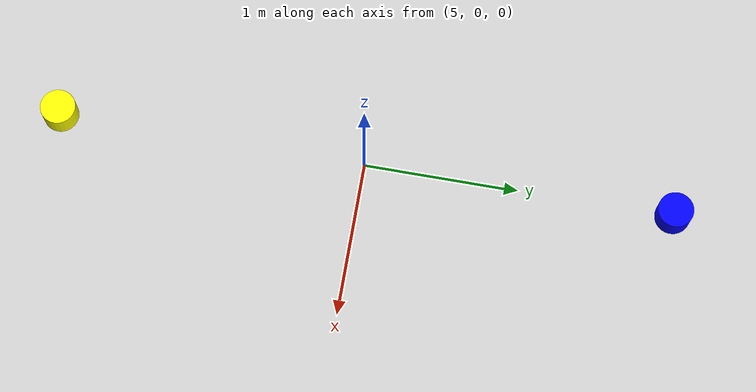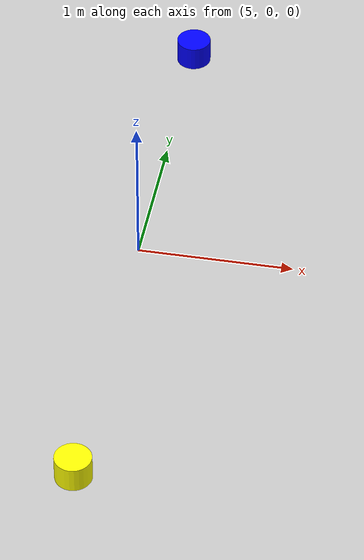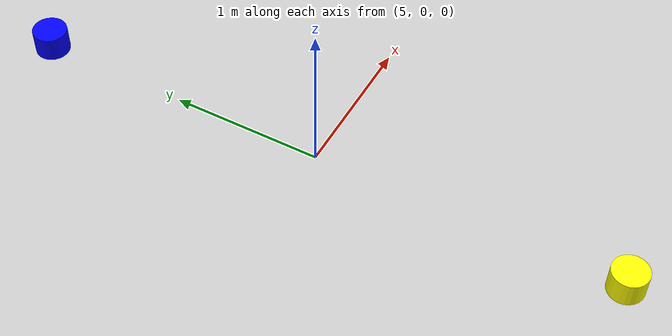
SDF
<?xml version="1.0" ?>
<sdf version="1.6">
  <world name="fsd_track">

    <!-- Sun light -->
    <include>
      <uri>model://sun</uri>
    </include>

    <!-- Ground plane -->
    <include>
      <uri>model://ground_plane</uri>
    </include>

    <!-- Blue Cones (Left boundary) - Add multiple -->
    <model name="blue_cone_1">
      <pose>5 2 0 0 0 0</pose>
      <static>true</static>
      <link name="link">
        <visual name="visual">
          <geometry>
            <cylinder>
              <radius>0.114</radius>
              <length>0.325</length>
            </cylinder>
          </geometry>
          <material>
            <ambient>0 0 1 1</ambient>
            <diffuse>0 0 1 1</diffuse>
          </material>
        </visual>
        <collision name="collision">
          <geometry>
            <cylinder>
              <radius>0.114</radius>
              <length>0.325</length>
            </cylinder>
          </geometry>
        </collision>
      </link>
    </model>

    <!-- Yellow Cones (Right boundary) -->
    <model name="yellow_cone_1">
      <pose>5 -2 0 0 0 0</pose>
      <static>true</static>
      <link name="link">
        <visual name="visual">
          <geometry>
            <cylinder>
              <radius>0.114</radius>
              <length>0.325</length>
            </cylinder>
          </geometry>
          <material>
            <ambient>1 1 0 1</ambient>
            <diffuse>1 1 0 1</diffuse>
          </material>
        </visual>
        <collision name="collision">
          <geometry>
            <cylinder>
              <radius>0.114</radius>
              <length>0.325</length>
            </cylinder>
          </geometry>
        </collision>
      </link>
    </model>

    <!-- Add more cones to create a track... -->
    <!-- Repeat with different poses -->

  </world>
</sdf>
